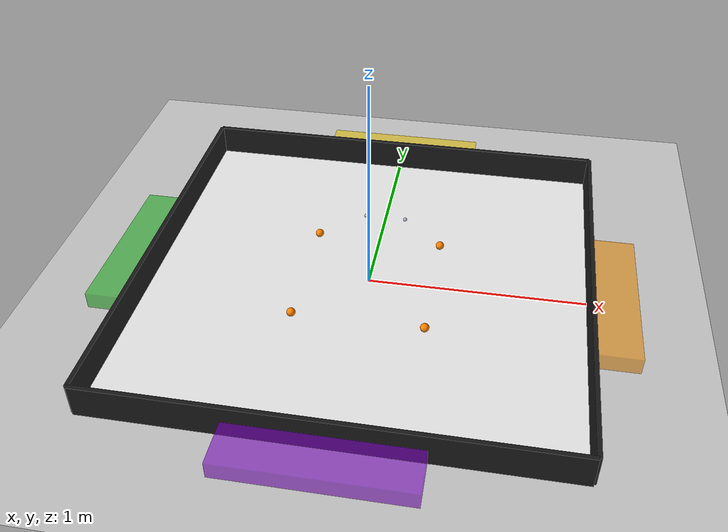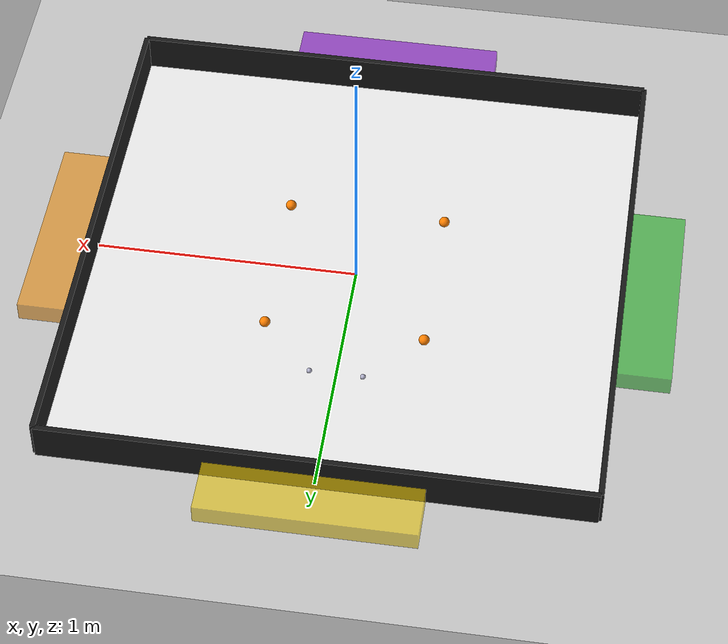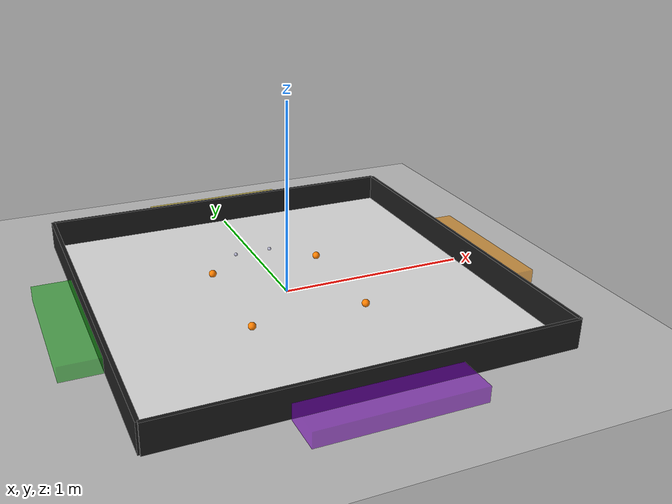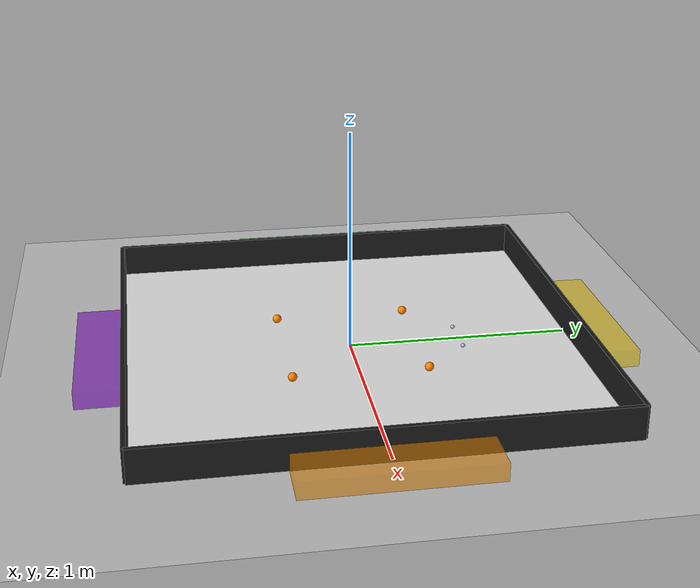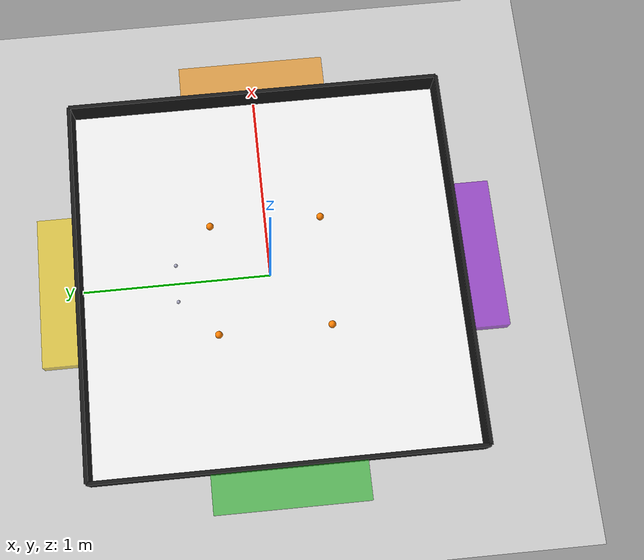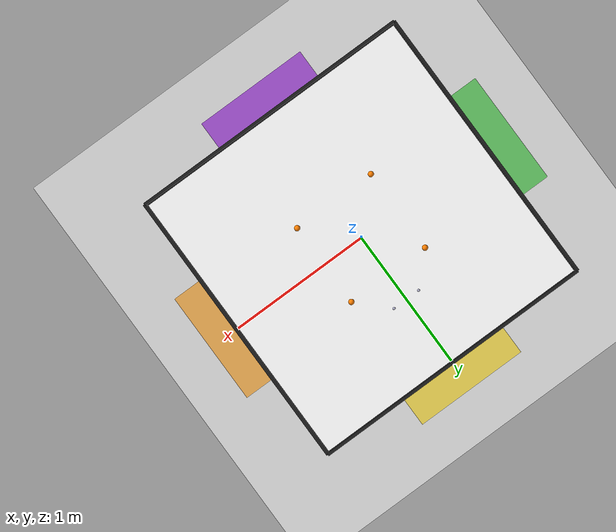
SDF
<?xml version="1.0"?>
<!--
  Unibots UK 2025-2026 Arena
  2000 × 2000 mm floor, 150 mm walls, white floor, black walls
  Scoring nets on N/E/S/W walls (800 mm wide, outside)
-->
<sdf version="1.10">
  <world name="unibots_arena">
    <plugin filename="gz-sim-physics-system" name="gz::sim::systems::Physics"/>
    <plugin filename="gz-sim-user-commands-system" name="gz::sim::systems::UserCommands"/>
    <plugin filename="gz-sim-scene-broadcaster-system" name="gz::sim::systems::SceneBroadcaster"/>

    <include><uri>model://sun</uri></include>
    <include><uri>model://ground_plane</uri></include>

    <physics type="ode">
      <max_step_size>0.001</max_step_size>
      <real_time_factor>1</real_time_factor>
      <real_time_update_rate>1000</real_time_update_rate>
    </physics>

    <!-- ══ ARENA FLOOR (white, 2m × 2m) ══ -->
    <model name="arena_floor">
      <static>true</static>
      <link name="floor">
        <collision name="col">
          <geometry><box><size>2.0 2.0 0.01</size></box></geometry>
        </collision>
        <visual name="vis">
          <geometry><box><size>2.0 2.0 0.01</size></box></geometry>
          <material>
            <ambient>0.95 0.95 0.95 1</ambient>
            <diffuse>0.95 0.95 0.95 1</diffuse>
          </material>
        </visual>
      </link>
    </model>

    <!-- ══ WALLS — North, South, East, West (150mm tall, black) ══ -->
    <!-- North wall -->
    <model name="wall_north">
      <static>true</static>
      <pose>0 1.01 0.075 0 0 0</pose>
      <link name="link">
        <collision name="col"><geometry><box><size>2.02 0.02 0.15</size></box></geometry></collision>
        <visual name="vis">
          <geometry><box><size>2.02 0.02 0.15</size></box></geometry>
          <material><ambient>0.1 0.1 0.1 1</ambient><diffuse>0.1 0.1 0.1 1</diffuse></material>
        </visual>
      </link>
    </model>

    <!-- South wall -->
    <model name="wall_south">
      <static>true</static>
      <pose>0 -1.01 0.075 0 0 0</pose>
      <link name="link">
        <collision name="col"><geometry><box><size>2.02 0.02 0.15</size></box></geometry></collision>
        <visual name="vis">
          <geometry><box><size>2.02 0.02 0.15</size></box></geometry>
          <material><ambient>0.1 0.1 0.1 1</ambient><diffuse>0.1 0.1 0.1 1</diffuse></material>
        </visual>
      </link>
    </model>

    <!-- East wall -->
    <model name="wall_east">
      <static>true</static>
      <pose>1.01 0 0.075 0 0 0</pose>
      <link name="link">
        <collision name="col"><geometry><box><size>0.02 2.02 0.15</size></box></geometry></collision>
        <visual name="vis">
          <geometry><box><size>0.02 2.02 0.15</size></box></geometry>
          <material><ambient>0.1 0.1 0.1 1</ambient><diffuse>0.1 0.1 0.1 1</diffuse></material>
        </visual>
      </link>
    </model>

    <!-- West wall -->
    <model name="wall_west">
      <static>true</static>
      <pose>-1.01 0 0.075 0 0 0</pose>
      <link name="link">
        <collision name="col"><geometry><box><size>0.02 2.02 0.15</size></box></geometry></collision>
        <visual name="vis">
          <geometry><box><size>0.02 2.02 0.15</size></box></geometry>
          <material><ambient>0.1 0.1 0.1 1</ambient><diffuse>0.1 0.1 0.1 1</diffuse></material>
        </visual>
      </link>
    </model>

    <!-- ══ SCORING NETS — coloured boxes outside walls (800mm wide, 200mm deep, −100mm lip) ══ -->
    <!-- North net (Yellow) -->
    <model name="net_north_yellow">
      <static>true</static>
      <pose>0 1.12 0.025 0 0 0</pose>
      <link name="link">
        <visual name="vis">
          <geometry><box><size>0.80 0.20 0.10</size></box></geometry>
          <material><ambient>0.95 0.80 0.0 0.6</ambient><diffuse>0.95 0.80 0.0 0.6</diffuse></material>
        </visual>
      </link>
    </model>

    <!-- East net (Orange) -->
    <model name="net_east_orange">
      <static>true</static>
      <pose>1.12 0 0.025 0 0 0</pose>
      <link name="link">
        <visual name="vis">
          <geometry><box><size>0.20 0.80 0.10</size></box></geometry>
          <material><ambient>0.95 0.55 0.0 0.6</ambient><diffuse>0.95 0.55 0.0 0.6</diffuse></material>
        </visual>
      </link>
    </model>

    <!-- South net (Purple) -->
    <model name="net_south_purple">
      <static>true</static>
      <pose>0 -1.12 0.025 0 0 0</pose>
      <link name="link">
        <visual name="vis">
          <geometry><box><size>0.80 0.20 0.10</size></box></geometry>
          <material><ambient>0.50 0.0 0.80 0.6</ambient><diffuse>0.50 0.0 0.80 0.6</diffuse></material>
        </visual>
      </link>
    </model>

    <!-- West net (Green) -->
    <model name="net_west_green">
      <static>true</static>
      <pose>-1.12 0 0.025 0 0 0</pose>
      <link name="link">
        <visual name="vis">
          <geometry><box><size>0.20 0.80 0.10</size></box></geometry>
          <material><ambient>0.1 0.7 0.1 0.6</ambient><diffuse>0.1 0.7 0.1 0.6</diffuse></material>
        </visual>
      </link>
    </model>

    <!-- ══ PING-PONG BALLS (orange, 40mm diameter) — 8 placed for testing ══ -->
    <model name="ball_1"><pose>0.3  0.3  0.02 0 0 0</pose>
      <link name="link">
        <collision name="col"><geometry><sphere><radius>0.020</radius></sphere></geometry></collision>
        <visual name="vis"><geometry><sphere><radius>0.020</radius></sphere></geometry>
          <material><ambient>1.0 0.5 0.0 1</ambient></material></visual>
        <inertial><mass value="0.0027"/></inertial>
      </link>
    </model>
    <model name="ball_2"><pose>-0.3  0.3  0.02 0 0 0</pose>
      <link name="link">
        <collision name="col"><geometry><sphere><radius>0.020</radius></sphere></geometry></collision>
        <visual name="vis"><geometry><sphere><radius>0.020</radius></sphere></geometry>
          <material><ambient>1.0 0.5 0.0 1</ambient></material></visual>
        <inertial><mass value="0.0027"/></inertial>
      </link>
    </model>
    <model name="ball_3"><pose>0.3 -0.3  0.02 0 0 0</pose>
      <link name="link">
        <collision name="col"><geometry><sphere><radius>0.020</radius></sphere></geometry></collision>
        <visual name="vis"><geometry><sphere><radius>0.020</radius></sphere></geometry>
          <material><ambient>1.0 0.5 0.0 1</ambient></material></visual>
        <inertial><mass value="0.0027"/></inertial>
      </link>
    </model>
    <model name="ball_4"><pose>-0.3 -0.3  0.02 0 0 0</pose>
      <link name="link">
        <collision name="col"><geometry><sphere><radius>0.020</radius></sphere></geometry></collision>
        <visual name="vis"><geometry><sphere><radius>0.020</radius></sphere></geometry>
          <material><ambient>1.0 0.5 0.0 1</ambient></material></visual>
        <inertial><mass value="0.0027"/></inertial>
      </link>
    </model>

    <!-- ══ MAGNETIC BALL BEARINGS (steel, 20mm diameter, 34g) — 4 placed for testing ══ -->
    <model name="bearing_1"><pose>0.1  0.5  0.01 0 0 0</pose>
      <link name="link">
        <collision name="col"><geometry><sphere><radius>0.010</radius></sphere></geometry></collision>
        <visual name="vis"><geometry><sphere><radius>0.010</radius></sphere></geometry>
          <material><ambient>0.7 0.7 0.8 1</ambient></material></visual>
        <inertial><mass value="0.034"/></inertial>
      </link>
    </model>
    <model name="bearing_2"><pose>-0.1  0.5  0.01 0 0 0</pose>
      <link name="link">
        <collision name="col"><geometry><sphere><radius>0.010</radius></sphere></geometry></collision>
        <visual name="vis"><geometry><sphere><radius>0.010</radius></sphere></geometry>
          <material><ambient>0.7 0.7 0.8 1</ambient></material></visual>
        <inertial><mass value="0.034"/></inertial>
      </link>
    </model>

  </world>
</sdf>
